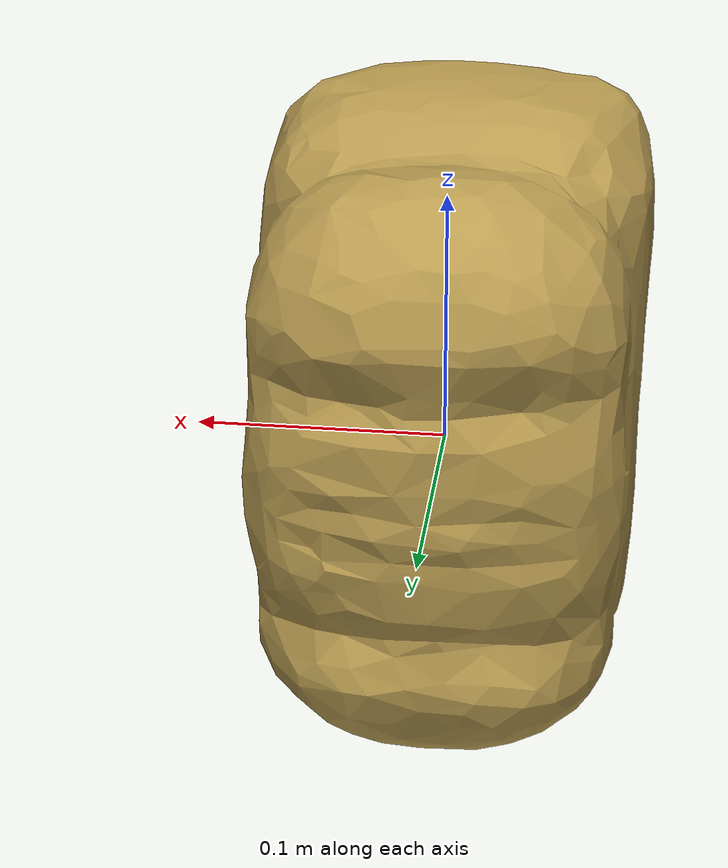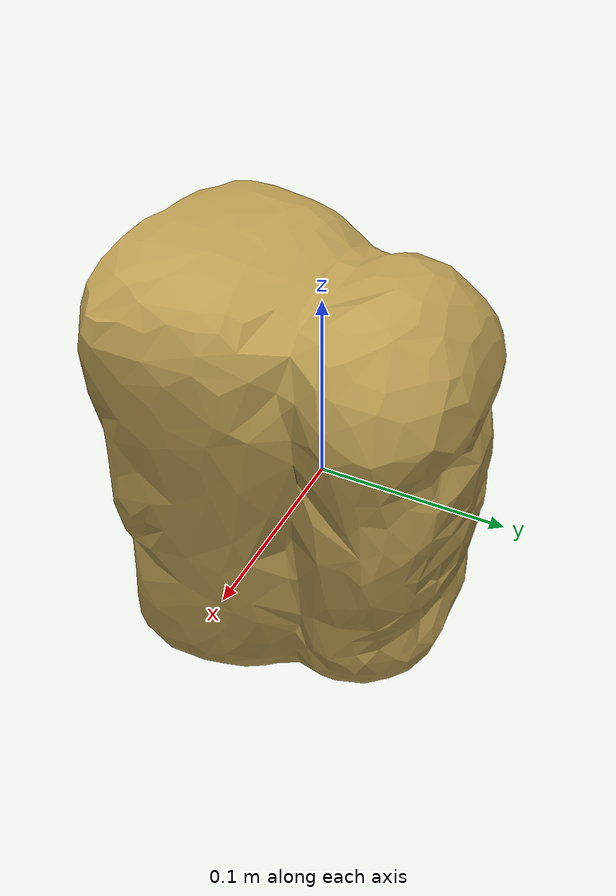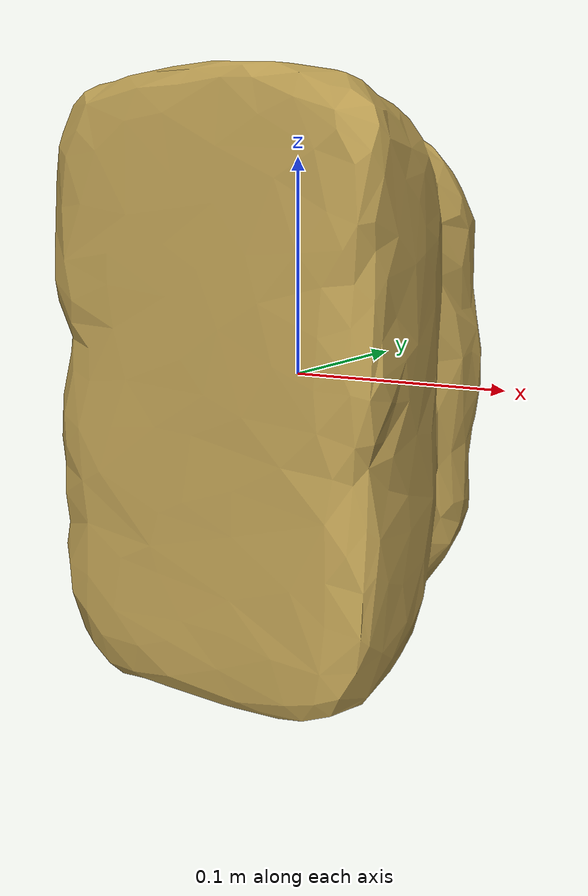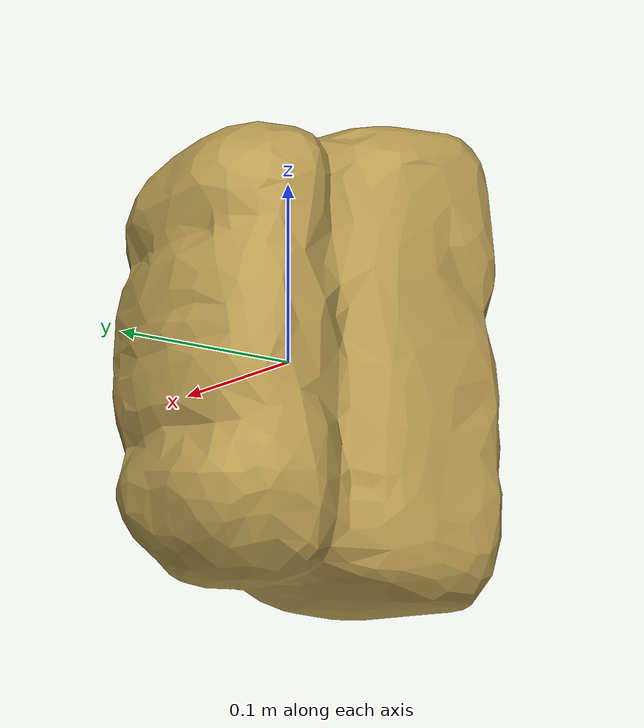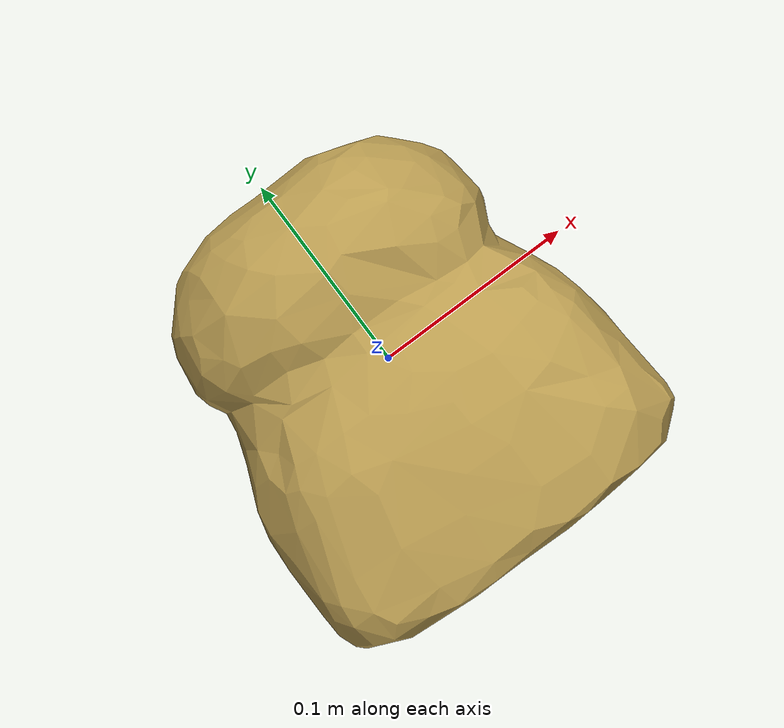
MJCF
<mujoco model="Bread_14">
  <compiler autolimits="true" boundmass="0.01" angle="radian"/>
  <default>
    <default class="/">
      <default class="__VISUAL_MJT__">
        <geom contype="0" conaffinity="0" group="0"/>
      </default>
      <default class="__STRUCTURAL_MJT__">
        <geom contype="8" conaffinity="15" group="4" friction="0.90000000000000002 0.90000000000000002 0.001" solref="0.025000000000000001 1" solimp="0.998 0.998 0.001"/>
      </default>
      <default class="__DYNAMIC_MJT__">
        <geom contype="1" conaffinity="15" group="4" friction="0.90000000000000002 0.90000000000000002 0.001" solref="0.025000000000000001 1" solimp="0.998 0.998 0.001"/>
      </default>
    </default>
  </default>
  <asset>
    <texture name="Bread6_Mat2" type="2d" file="Bread6_AlbedoTransparency.png"/>
    <material name="material_Bread6_Mat2" class="/" texture="Bread6_Mat2" specular="0.5" shininess="0.5" rgba="0.95588240000000002 0.83886919999999998 0.45685550000000003 1"/>
    <mesh name="Bread_14_bread6_b_mesh" class="/" file="Bread_14_bread6_b_mesh/Bread_14_bread6_b_mesh.obj" scale="1 1 1"/>
  </asset>
  <worldbody>
    <body name="Bread_14">
      <joint name="Bread_14_free" class="/" type="free" pos="0 0 0" axis="0 0 1" stiffness="0" range="0 0" armature="0" damping="0.10000000000000001" frictionloss="0"/>
      <body name="Bread_14_bread6_b_mesh" pos="-0 -0.01044 0" quat="1 0 0 0">
        <geom name="Bread_14_bread6_b_mesh" class="__VISUAL_MJT__" type="mesh" material="material_Bread6_Mat2" shellinertia="false" mesh="Bread_14_bread6_b_mesh"/>
        <geom name="Bread_14_PrimitiveCollider_0" class="__DYNAMIC_MJT__" type="box" size="0.078207254409790039 0.051680564880371094 0.13157816231250763" rgba="0 1 0 1" pos="-0 -0.025359153747558594 0" quat="1 0 0 0"/>
        <geom name="Bread_14_PrimitiveCollider_1" class="__DYNAMIC_MJT__" type="box" size="0.072795912623405457 0.035857200622558594 0.12215443700551987" rgba="0 1 0 1" pos="-0 0.062067784368991852 0" quat="1 0 0 0"/>
      </body>
    </body>
  </worldbody>
</mujoco>
